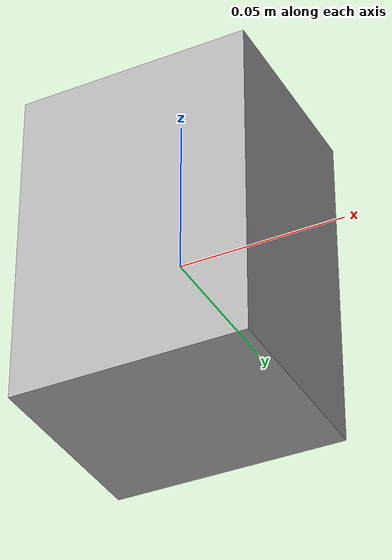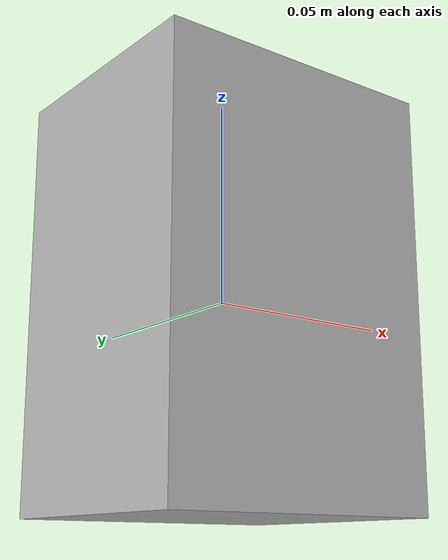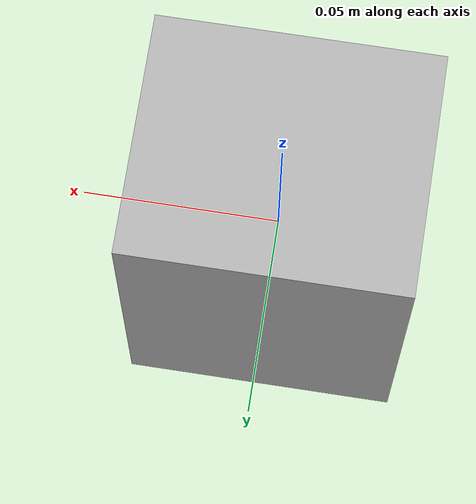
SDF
<?xml version="1.0" ?>
<sdf version="1.7">
  <model name="prisma_cuadratico">
    <static>false</static>
    <link name="link">
      <pose>0 0 0 0 0 0</pose>
      <inertial>
        <mass>1</mass>
        <inertia>
          <ixx>0.005</ixx>
          <iyy>0.00833333</iyy>
          <izz>0.00833333</izz>
        </inertia>
      </inertial>
      <collision name="collision">
        <geometry>
          <box>
            <size>0.07 0.06 0.10</size>
          </box>
        </geometry>
      </collision>
      <visual name="visual">
        <geometry>
          <box>
            <size>0.07 0.06 0.10</size>
          </box>
        </geometry>
        <material>
          <ambient>0.7 0.7 0.7 1</ambient>
          <diffuse>0.7 0.7 0.7 1</diffuse>
          <specular>0.1 0.1 0.1 1</specular>
          <emissive>0 0 0 1</emissive>
        </material>
      </visual>
    </link>
  </model>
</sdf>
